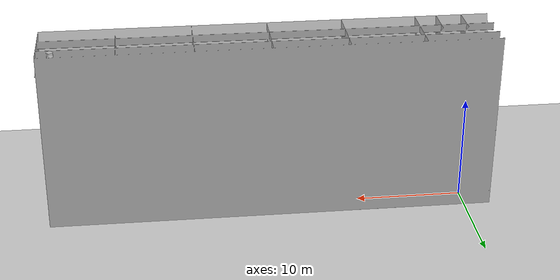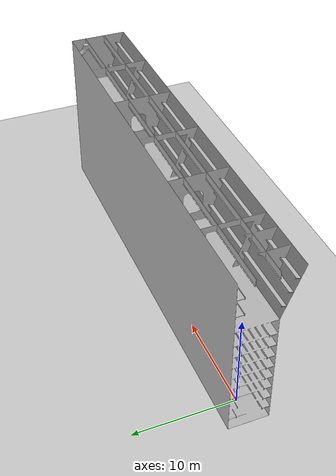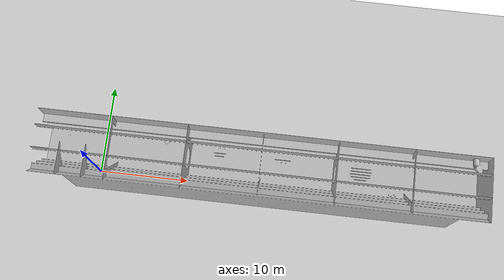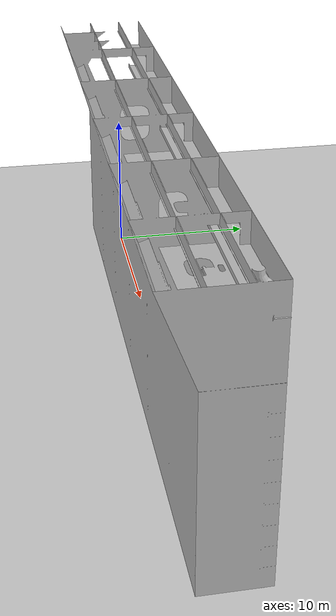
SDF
<sdf version="1.5">
 <world name="default">
  <plugin name="ros_interface_plugin" filename="librotors_gazebo_ros_interface_plugin.so"/>
  <light name="sun" type="directional">
   <pose>0 0 10 0 0 0</pose>
   <diffuse>0.8 0.8 0.8 1</diffuse>
   <specular>0.2 0.2 0.2 1</specular>
   <attenuation>
    <range>1000</range>
    <constant>0.9</constant>
    <linear>0.01</linear>
    <quadratic>0.001</quadratic>
   </attenuation>
   <direction>-0.5 0.1 -0.9</direction>
  </light>
  <model name="ground_plane">
   <static>1</static>
   <link name="ground_plane_link">
    <collision name="collision">
     <geometry><plane><normal>0 0 1</normal><size>100 100</size></plane></geometry>
     <surface><friction><ode><mu>100</mu><mu2>50</mu2></ode></friction></surface>
    </collision>
    <visual name="visual">
     <cast_shadows>0</cast_shadows>
     <geometry><plane><normal>0 0 1</normal><size>100 100</size></plane></geometry>
     <material>
      <script><uri>file://media/materials/scripts/gazebo.material</uri><name>Gazebo/Grey</name></script>
     </material>
    </visual>
   </link>
  </model>
  <gravity>0 0 -9.8</gravity>
  <magnetic_field>6e-06 2.3e-05 -4.2e-05</magnetic_field>
  <atmosphere type="adiabatic"/>
  <physics name="default_physics" default="0" type="ode">
   <max_step_size>0.001</max_step_size>
   <real_time_factor>1</real_time_factor>
   <real_time_update_rate>1000</real_time_update_rate>
  </physics>
  <scene><ambient>0.4 0.4 0.4 1</ambient><background>0.7 0.7 0.7 1</background><shadows>1</shadows></scene>
  <audio><device>default</device></audio>
  <spherical_coordinates>
   <surface_model>EARTH_WGS84</surface_model>
   <latitude_deg>0</latitude_deg>
   <longitude_deg>0</longitude_deg>
   <elevation>0</elevation>
   <heading_deg>0</heading_deg>
  </spherical_coordinates>
  <model name="ballast_tank">
   <static>true</static>
   <link name="ballast_tank_link">
    <collision name="collision">
     <geometry>
      <mesh><uri>model://ballast_tank/meshes/ballast_tank_2x.dae</uri><scale>1 1 1</scale></mesh>
     </geometry>
    </collision>
    <visual name="visual">
     <geometry>
      <mesh><uri>model://ballast_tank/meshes/ballast_tank_2x.dae</uri><scale>1 1 1</scale></mesh>
     </geometry>
     <material>
      <script><uri>model://ballast_tank/materials/scripts/repeated.material</uri><name>FullMaterial</name></script>
     </material>
    </visual>
   </link>
  </model>
 </world>
</sdf>
